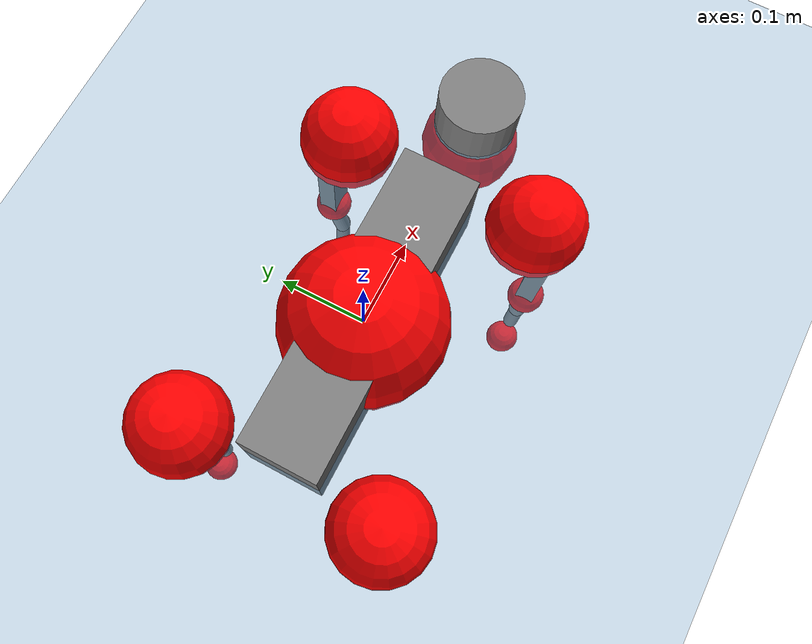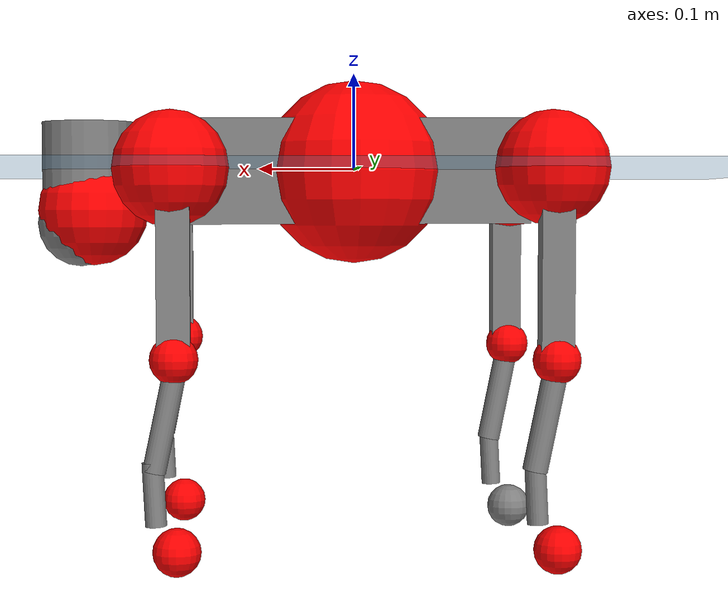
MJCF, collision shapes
<mujoco model="go2">
  <compiler angle="radian" assetdir="assets" balanceinertia="true" inertiafromgeom="false"/>

  <option timestep="0.005" density="1.2" viscosity="2e-05"/>

  <size nkey="1"/>

  <visual>
    <quality shadowsize="8192"/>
    <map shadowclip="0.5"/>
  </visual>

  <default>
    <default class="/">
      <geom contype="0" conaffinity="0" group="1" solref="-1000 -80"/>
      <site size="0.01 0.005 0.005" group="5"/>
      <general forcelimited="true" biastype="affine" gainprm="20" biasprm="0 -20 -0.5"/>
      <default class="go2">
        <joint armature="0.01" damping="0.01" frictionloss="0.2"/>
        <geom condim="1" margin="0.001"/>
        <default class="visual">
          <geom type="mesh" group="2"/>
        </default>
        <default class="collision">
          <geom group="3"/>
          <default class="foot">
            <geom size="0.022 0 0" condim="6" priority="1" friction="0.8 0.02 0.01" solimp="0.015 1 0.022"/>
          </default>
        </default>
        <default class="reward_collision_sphere">
          <geom group="5" rgba="1 0 0 1"/>
        </default>
      </default>
    </default>
  </default>

  <asset>
    <texture type="skybox" colorspace="auto" name="//unnamed_texture_0" builtin="gradient" rgb1="0.95 0.95 0.95" rgb2="0.95 0.95 0.95" width="100" height="600"/>
    <texture type="2d" colorspace="auto" name="texplane" builtin="checker" rgb1="0.345 0.575 0.748" rgb2="0.345 0.575 0.748" markrgb="1 1 1" width="512" height="512"/>
    <material name="MatPlane" class="/" texture="texplane" texuniform="true" texrepeat="2 2" specular="0.9"/>
    <material name="metal" class="/" rgba="0.9 0.95 0.95 1"/>
    <material name="black" class="/" rgba="0 0 0 1"/>
    <material name="white" class="/"/>
    <material name="gray" class="/" rgba="0.671705 0.692426 0.77427 1"/>
    <mesh name="base_0" class="/" file="base_0.obj"/>
    <mesh name="base_1" class="/" file="base_1.obj"/>
    <mesh name="base_2" class="/" file="base_2.obj"/>
    <mesh name="base_3" class="/" file="base_3.obj"/>
    <mesh name="base_4" class="/" file="base_4.obj"/>
    <mesh name="hip_0" class="/" file="hip_0.obj"/>
    <mesh name="hip_1" class="/" file="hip_1.obj"/>
    <mesh name="thigh_0" class="/" file="thigh_0.obj"/>
    <mesh name="thigh_1" class="/" file="thigh_1.obj"/>
    <mesh name="thigh_mirror_0" class="/" file="thigh_mirror_0.obj"/>
    <mesh name="thigh_mirror_1" class="/" file="thigh_mirror_1.obj"/>
    <mesh name="calf_0" class="/" file="calf_0.obj"/>
    <mesh name="calf_1" class="/" file="calf_1.obj"/>
    <mesh name="calf_mirror_0" class="/" file="calf_mirror_0.obj"/>
    <mesh name="calf_mirror_1" class="/" file="calf_mirror_1.obj"/>
    <mesh name="foot" class="/" file="foot.obj"/>
  </asset>

  <worldbody>
    <geom name="floor" class="/" size="100 100 0.125" type="plane" group="0" material="MatPlane"/>
    <light name="toplight_shadow" class="/" pos="0 0 5" dir="0.0990148 0.0990148 -0.990148" type="directional" ambient="0.04 0.04 0.04" diffuse="0.55 0.55 0.55" specular="0.12 0.12 0.12"/>
    <light name="toplight_fill" class="/" pos="0 0 5" dir="0.0990148 0.0990148 -0.990148" type="directional" castshadow="false" ambient="0.04 0.04 0.04" diffuse="0.3 0.3 0.3" specular="0.08 0.08 0.08"/>
    <body name="trunk" childclass="go2" pos="-0.000169353 -0.000331862 -0.00263738" quat="0.999999 -2.19857e-05 0.00123507 0.000310371">
      <inertial pos="0.0200492 0.00226622 -0.00479718" quat="0.00351614 0.72043 -0.00779036 0.693475" mass="6.16072" diaginertia="0.0989368 0.10932 0.0137024"/>
      <joint name="//unnamed_joint_0" type="free" armature="0" damping="0" frictionloss="0"/>
      <geom name="//unnamed_geom_1" class="visual" material="black" mesh="base_0"/>
      <geom name="//unnamed_geom_2" class="visual" material="black" mesh="base_1"/>
      <geom name="//unnamed_geom_3" class="visual" material="black" mesh="base_2"/>
      <geom name="//unnamed_geom_4" class="visual" material="white" mesh="base_3"/>
      <geom name="//unnamed_geom_5" class="visual" material="gray" mesh="base_4"/>
      <geom name="trunk_1" class="collision" size="0.180242 0.0447969 0.0546187" type="box"/>
      <geom name="trunk_2" class="collision" size="0.0479111 0.04312" pos="0.278689 0 0.00883693" type="cylinder"/>
      <geom name="trunk_3" class="collision" size="0.0450365" pos="0.286512 0 -0.0530216"/>
      <geom name="//unnamed_geom_9" class="reward_collision_sphere" size="0.0958223"/>
      <geom name="//unnamed_geom_10" class="reward_collision_sphere" size="0.0574934" pos="0.2738 0 -0.0397662"/>
      <site name="imu" pos="-0.0290862 0.00329995 0.0279006" size="0.00958223"/>
      <camera name="track" pos="0 -2.02623 0" quat="0.707107 0.707107 0 0" mode="trackcom"/>
      <camera name="ego_camera" pos="0.305092 0 0.0397662" quat="-0.5 -0.5 0.5 0.5"/>
      <body name="FL_hip" pos="0.189247 0.0476998 0.00104339" quat="1 -1.27245e-05 -8.8762e-05 0.000143155">
        <inertial pos="-0.00756209 0.00227638 -0.00251976" quat="0.486815 0.498225 0.509084 0.505586" mass="0.591414" diaginertia="0.000800906 0.000639854 0.000256579"/>
        <joint name="FL_hip_joint" pos="0 0 0" axis="0.999973 -0.00730565 0.000602693" range="-1.04531 1.05608" armature="0.00964425" damping="0" frictionloss="0.19443"/>
        <geom name="//unnamed_geom_11" class="visual" material="metal" mesh="hip_0"/>
        <geom name="//unnamed_geom_12" class="visual" material="gray" mesh="hip_1"/>
        <geom name="//unnamed_geom_13" class="collision" size="0.0440782 0.0191645" pos="0 0.0810494 0" quat="0.707107 0.707107 0 0" type="cylinder"/>
        <geom name="//unnamed_geom_14" class="reward_collision_sphere" size="0.0574934" pos="0 0.0709182 0"/>
        <body name="FL_thigh" pos="-0.00296798 0.0966228 0.0023487" quat="1 -2.89321e-05 -6.395e-05 -4.73852e-06">
          <inertial pos="-0.00441203 -0.0226532 -0.0295026" quat="0.829864 0.0802609 -0.0182372 0.551861" mass="0.971632" diaginertia="0.00510654 0.00605303 0.000448077"/>
          <joint name="FL_thigh_joint" pos="0 0 0" axis="0.00108815 0.999991 0.00409622" stiffness="0.00747946" range="-1.5776 3.49508" armature="0.00889536" damping="0.0144323" frictionloss="0.190962"/>
          <geom name="//unnamed_geom_15" class="visual" material="metal" mesh="thigh_0"/>
          <geom name="//unnamed_geom_16" class="visual" material="gray" mesh="thigh_1"/>
          <geom name="//unnamed_geom_17" class="collision" size="0.102051 0.0117382 0.0162898" pos="0 0 -0.0941133" quat="0.707107 0 0.707107 0" type="box"/>
          <body name="FL_calf" pos="-8.60445e-05 0.000240724 -0.188568" quat="1 8.84776e-05 6.76671e-05 0.000156961">
            <inertial pos="0.00357329 -0.00312444 -0.124377" quat="0.709605 0.00384991 -0.00438838 0.704576" mass="0.210315" diaginertia="0.00128281 0.00155635 2.85861e-05"/>
            <joint name="FL_calf_joint" pos="0 0 0" axis="-0.003339 0.999985 -0.00439403" stiffness="0.00291289" range="-2.77641 -0.821008" armature="0.00995074" damping="0.00748128" frictionloss="0.217117"/>
            <geom name="//unnamed_geom_18" class="visual" material="gray" mesh="calf_0"/>
            <geom name="//unnamed_geom_19" class="visual" material="black" mesh="calf_1"/>
            <geom name="FL_calf0" class="collision" size="0.0114987 0.0574934" pos="0.00782286 0 -0.0530216" quat="0.994493 0 -0.104807 0" type="cylinder"/>
            <geom name="//unnamed_geom_21" class="collision" size="0.0105404 0.0311422" pos="0.0195572 0 -0.130787" quat="0.999688 0 0.0249974 0" type="cylinder"/>
            <geom name="//unnamed_geom_22" class="visual" pos="0 0 -0.188227" quat="1 0 0 0" material="black" mesh="foot"/>
            <geom name="FL_foot" class="foot" size="0.0162724" pos="-0.00195572 0 -0.188227"/>
            <geom name="//unnamed_geom_24" class="reward_collision_sphere" size="0.0239556"/>
            <geom name="//unnamed_geom_25" class="reward_collision_sphere" size="0.0239556" pos="-0.00195572 0 -0.188227"/>
            <site name="FL_foot" class="foot" pos="-0.00195572 0 -0.188227" size="0.00958223"/>
          </body>
        </body>
      </body>
      <body name="FR_hip" pos="0.189689 -0.0470551 0.000740309" quat="0.999999 -0.00123416 -9.44566e-05 0.000735032">
        <inertial pos="-0.00431692 -0.00184332 0.000298466" quat="0.501297 0.506822 0.488212 0.50347" mass="0.623921" diaginertia="0.000793161 0.000642567 0.00026077"/>
        <joint name="FR_hip_joint" pos="0 0 0" axis="0.999993 -0.00167114 -0.00325424" range="-1.10313 1.04217" armature="0.00912304" damping="0.00293751" frictionloss="0.202224"/>
        <geom name="//unnamed_geom_26" class="visual" pos="0 1.12749e-09 4.83603e-08" quat="4.63268e-05 1 0 0" material="metal" mesh="hip_0"/>
        <geom name="//unnamed_geom_27" class="visual" pos="0 1.8278e-09 -1.19614e-07" quat="4.63268e-05 1 0 0" material="gray" mesh="hip_1"/>
        <geom name="//unnamed_geom_28" class="collision" size="0.0440782 0.0191645" pos="0 -0.0810494 0" quat="0.707107 0.707107 0 0" type="cylinder"/>
        <geom name="//unnamed_geom_29" class="reward_collision_sphere" size="0.0574934" pos="0 -0.0709182 0"/>
        <body name="FR_thigh" pos="1.07956e-05 -0.0977679 0.00187756" quat="1 -2.13675e-05 -2.39304e-05 -2.72102e-05">
          <inertial pos="-0.00293813 0.02322 -0.0279055" quat="0.548771 -0.0197296 0.0809866 0.831807" mass="1.03437" diaginertia="0.00534061 0.00606098 0.000470514"/>
          <joint name="FR_thigh_joint" pos="0 0 0" axis="-0.00509169 -0.999967 0.00629743" stiffness="0.0105518" range="-3.48896 1.5564" armature="0.00975239" damping="0.00402741" frictionloss="0.17318"/>
          <geom name="//unnamed_geom_30" class="visual" material="metal" mesh="thigh_mirror_0"/>
          <geom name="//unnamed_geom_31" class="visual" material="gray" mesh="thigh_mirror_1"/>
          <geom name="//unnamed_geom_32" class="collision" size="0.102051 0.0117382 0.0162898" pos="0 0 -0.0941133" quat="0.707107 0 0.707107 0" type="box"/>
          <body name="FR_calf" pos="-0.00312949 -0.000849698 -0.186073" quat="1 -2.88081e-05 -0.00022786 0.000317018">
            <inertial pos="0.00730962 -0.00171629 -0.123154" quat="0.707063 -0.00531641 -0.0106052 0.707051" mass="0.207089" diaginertia="0.00128189 0.00155761 2.73901e-05"/>
            <joint name="FR_calf_joint" pos="0 0 0" axis="0.00075339 -1 -0.000503263" stiffness="0.00509793" range="0.831646 2.71697" armature="0.00964497" damping="0" frictionloss="0.191497"/>
            <geom name="//unnamed_geom_33" class="visual" material="gray" mesh="calf_mirror_0"/>
            <geom name="//unnamed_geom_34" class="visual" material="black" mesh="calf_mirror_1"/>
            <geom name="FR_calf0" class="collision" size="0.0124569 0.0574934" pos="0.00977858 0 -0.0530216" quat="0.995004 0 -0.0998334 0" type="cylinder"/>
            <geom name="//unnamed_geom_36" class="collision" size="0.0105404 0.0311422" pos="0.0195572 0 -0.130787" quat="0.999688 0 0.0249974 0" type="cylinder"/>
            <geom name="//unnamed_geom_37" class="visual" pos="0 0 -0.188227" quat="1 0 0 0" material="black" mesh="foot"/>
            <geom name="FR_foot" class="foot" size="0.0210594" pos="-0.00195572 0 -0.188227"/>
            <geom name="//unnamed_geom_39" class="reward_collision_sphere" size="0.0239556"/>
            <geom name="//unnamed_geom_40" class="reward_collision_sphere" size="0.0239556" pos="-0.00195572 0 -0.188227"/>
            <site name="FR_foot" class="foot" pos="-0.00195572 0 -0.188227" size="0.00958223"/>
          </body>
        </body>
      </body>
      <body name="RL_hip" pos="-0.188567 0.0459767 0.00132235" quat="1 2.8413e-05 -4.96209e-05 -0.000129046">
        <inertial pos="0.00611231 1.96659e-05 -0.00249212" quat="0.503095 0.500173 0.496951 0.499763" mass="0.59143" diaginertia="0.000784457 0.000626623 0.000250715"/>
        <joint name="RL_hip_joint" pos="0 0 0" axis="-0.999929 -0.0118647 -0.000960096" range="-1.09652 1.09463" armature="0.0106647" damping="0.0131386" frictionloss="0.1919"/>
        <geom name="//unnamed_geom_41" class="visual" pos="-8.20324e-10 0 -1.60802e-07" quat="4.63268e-05 0 1 0" material="metal" mesh="hip_0"/>
        <geom name="//unnamed_geom_42" class="visual" pos="-1.32984e-09 0 -1.42609e-07" quat="4.63268e-05 0 1 0" material="gray" mesh="hip_1"/>
        <geom name="//unnamed_geom_43" class="collision" size="0.0440782 0.0191645" pos="0 0.0810494 0" quat="0.707107 0.707107 0 0" type="cylinder"/>
        <geom name="//unnamed_geom_44" class="reward_collision_sphere" size="0.0574934" pos="0 0.0709182 0"/>
        <body name="RL_thigh" pos="4.0262e-05 0.0943405 0.000666228" quat="1 0.000155376 -0.000776616 -0.000231447">
          <inertial pos="-0.000986266 -0.0239662 -0.0316027" quat="0.829519 0.0849987 -0.0200126 0.55161" mass="1.03929" diaginertia="0.00566804 0.0064069 0.000497291"/>
          <joint name="RL_thigh_joint" pos="0 0 0" axis="-0.00525479 0.999805 -0.0190177" stiffness="0.00558551" range="-0.545347 4.54671" armature="0.0099497" damping="0.00275382" frictionloss="0.189643"/>
          <geom name="//unnamed_geom_45" class="visual" material="metal" mesh="thigh_0"/>
          <geom name="//unnamed_geom_46" class="visual" material="gray" mesh="thigh_1"/>
          <geom name="//unnamed_geom_47" class="collision" size="0.102051 0.0117382 0.0162898" pos="0 0 -0.0941133" quat="0.707107 0 0.707107 0" type="box"/>
          <body name="RL_calf" pos="-0.00125099 -0.00107838 -0.19054" quat="1 -0.00082119 -0.000120403 -0.000238029">
            <inertial pos="0.00350778 0.00113424 -0.127458" quat="0.713023 0.00514396 0.00682944 0.701088" mass="0.2098" diaginertia="0.0013106 0.00152922 2.79556e-05"/>
            <joint name="RL_calf_joint" pos="0 0 0" axis="-0.00736661 0.999965 -0.00402031" stiffness="0.00524999" range="-2.73129 -0.888645" armature="0.0108106" damping="0" frictionloss="0.191196"/>
            <geom name="//unnamed_geom_48" class="visual" material="gray" mesh="calf_0"/>
            <geom name="//unnamed_geom_49" class="visual" material="black" mesh="calf_1"/>
            <geom name="RL_calf0" class="collision" size="0.0124569 0.0574934" pos="0.00977858 0 -0.0530216" quat="0.995004 0 -0.0998334 0" type="cylinder"/>
            <geom name="//unnamed_geom_51" class="collision" size="0.0105404 0.0311422" pos="0.0195572 0 -0.130787" quat="0.999688 0 0.0249974 0" type="cylinder"/>
            <geom name="//unnamed_geom_52" class="visual" pos="0 0 -0.188227" quat="1 0 0 0" material="black" mesh="foot"/>
            <geom name="RL_foot" class="foot" size="0.0192782" pos="-0.00195572 0 -0.188227"/>
            <geom name="//unnamed_geom_54" class="reward_collision_sphere" size="0.0239556"/>
            <geom name="//unnamed_geom_55" class="reward_collision_sphere" size="0.0239556" pos="-0.00195572 0 -0.188227"/>
            <site name="RL_foot" class="foot" pos="-0.00195572 0 -0.188227" size="0.00958223"/>
          </body>
        </body>
      </body>
      <body name="RR_hip" pos="-0.186354 -0.0479851 -0.000821054" quat="1 0.000120686 9.12962e-05 9.66059e-05">
        <inertial pos="0.00321916 -0.00273729 -0.000113198" quat="0.501369 0.504822 0.488682 0.504949" mass="0.596115" diaginertia="0.000842834 0.000658908 0.00026818"/>
        <joint name="RR_hip_joint" pos="0 0 0" axis="-0.999907 -0.00401026 -0.0130378" stiffness="0.00216181" range="-1.04339 1.04933" armature="0.00965761" damping="0.00880282" frictionloss="0.216874"/>
        <geom name="//unnamed_geom_56" class="visual" pos="8.21545e-10 1.12749e-09 -2.09163e-07" quat="2.14617e-09 4.63268e-05 4.63268e-05 -1" material="metal" mesh="hip_0"/>
        <geom name="//unnamed_geom_57" class="visual" pos="1.32682e-09 1.8278e-09 -2.29952e-08" quat="2.14617e-09 4.63268e-05 4.63268e-05 -1" material="gray" mesh="hip_1"/>
        <geom name="//unnamed_geom_58" class="collision" size="0.0440782 0.0191645" pos="0 -0.0810494 0" quat="0.707107 0.707107 0 0" type="cylinder"/>
        <geom name="//unnamed_geom_59" class="reward_collision_sphere" size="0.0574934" pos="0 -0.0709182 0"/>
        <body name="RR_thigh" pos="0.0014355 -0.0966337 -0.00203758" quat="1 0.000179108 0.000475159 -0.000133791">
          <inertial pos="-0.00190035 0.0230087 -0.0308081" quat="0.555973 -0.0186773 0.0820214 0.826933" mass="0.992316" diaginertia="0.00553985 0.00633045 0.000473365"/>
          <joint name="RR_thigh_joint" pos="0 0 0" axis="-0.00213124 -0.999973 -0.00698061" stiffness="0.000534908" range="-4.54269 0.487523" armature="0.00937866" damping="0.0123144" frictionloss="0.201803"/>
          <geom name="//unnamed_geom_60" class="visual" material="metal" mesh="thigh_mirror_0"/>
          <geom name="//unnamed_geom_61" class="visual" material="gray" mesh="thigh_mirror_1"/>
          <geom name="//unnamed_geom_62" class="collision" size="0.102051 0.0117382 0.0162898" pos="0 0 -0.0941133" quat="0.707107 0 0.707107 0" type="box"/>
          <body name="RR_calf" pos="-0.00214265 0.00159672 -0.190516" quat="0.999999 0.00118949 -0.000402984 -0.000187492">
            <inertial pos="0.00503947 0.00062653 -0.125036" quat="0.702868 -0.0164831 0.00505444 0.711112" mass="0.216777" diaginertia="0.00135565 0.00158352 2.80055e-05"/>
            <joint name="RR_calf_joint" pos="0 0 0" axis="0.000588572 -0.999878 0.0156119" range="0.883022 2.74852" armature="0.00944212" damping="0.00309541" frictionloss="0.20177"/>
            <geom name="//unnamed_geom_63" class="visual" material="gray" mesh="calf_mirror_0"/>
            <geom name="//unnamed_geom_64" class="visual" material="black" mesh="calf_mirror_1"/>
            <geom name="RR_calf0" class="collision" size="0.0124569 0.0574934" pos="0.00977858 0 -0.0530216" quat="0.995004 0 -0.0998334 0" type="cylinder"/>
            <geom name="//unnamed_geom_66" class="collision" size="0.0105404 0.0311422" pos="0.0195572 0 -0.130787" quat="0.999688 0 0.0249974 0" type="cylinder"/>
            <geom name="//unnamed_geom_67" class="visual" pos="0 0 -0.188227" quat="1 0 0 0" material="black" mesh="foot"/>
            <geom name="RR_foot" class="foot" size="0.023968" pos="-0.00195572 0 -0.188227"/>
            <geom name="//unnamed_geom_69" class="reward_collision_sphere" size="0.0239556"/>
            <geom name="//unnamed_geom_70" class="reward_collision_sphere" size="0.0239556" pos="-0.00195572 0 -0.188227"/>
            <site name="RR_foot" class="foot" pos="-0.00195572 0 -0.188227" size="0.00958223"/>
          </body>
        </body>
      </body>
    </body>
  </worldbody>

  <contact>
    <pair class="/" geom1="floor" geom2="FL_foot" name="//unnamed_contact_0"/>
    <pair class="/" geom1="floor" geom2="FR_foot" name="//unnamed_contact_1"/>
    <pair class="/" geom1="floor" geom2="RL_foot" name="//unnamed_contact_2"/>
    <pair class="/" geom1="floor" geom2="RR_foot" name="//unnamed_contact_3"/>
  </contact>

  <actuator>
    <general name="FL_hip" class="/" joint="FL_hip_joint" forcerange="-22.3933 22.3933" gainprm="18.7817" biasprm="0 -18.7817 -0.492882"/>
    <general name="FL_thigh" class="/" joint="FL_thigh_joint" forcerange="-22.2504 22.2504" gainprm="18.7817" biasprm="0 -18.7817 -0.492882"/>
    <general name="FL_calf" class="/" joint="FL_calf_joint" forcerange="-44.4253 44.4253" gainprm="18.7817" biasprm="0 -18.7817 -0.492882"/>
    <general name="FR_hip" class="/" joint="FR_hip_joint" forcerange="-23.1935 23.1935" gainprm="18.7817" biasprm="0 -18.7817 -0.492882"/>
    <general name="FR_thigh" class="/" joint="FR_thigh_joint" forcerange="-23.0627 23.0627" gainprm="18.7817" biasprm="0 -18.7817 -0.492882"/>
    <general name="FR_calf" class="/" joint="FR_calf_joint" forcerange="-43.7583 43.7583" gainprm="18.7817" biasprm="0 -18.7817 -0.492882"/>
    <general name="RL_hip" class="/" joint="RL_hip_joint" forcerange="-22.7073 22.7073" gainprm="18.7817" biasprm="0 -18.7817 -0.492882"/>
    <general name="RL_thigh" class="/" joint="RL_thigh_joint" forcerange="-20.5171 20.5171" gainprm="18.7817" biasprm="0 -18.7817 -0.492882"/>
    <general name="RL_calf" class="/" joint="RL_calf_joint" forcerange="-47.6063 47.6063" gainprm="18.7817" biasprm="0 -18.7817 -0.492882"/>
    <general name="RR_hip" class="/" joint="RR_hip_joint" forcerange="-22.5874 22.5874" gainprm="18.7817" biasprm="0 -18.7817 -0.492882"/>
    <general name="RR_thigh" class="/" joint="RR_thigh_joint" forcerange="-23.3784 23.3784" gainprm="18.7817" biasprm="0 -18.7817 -0.492882"/>
    <general name="RR_calf" class="/" joint="RR_calf_joint" forcerange="-45.1632 45.1632" gainprm="18.7817" biasprm="0 -18.7817 -0.492882"/>
  </actuator>

  <sensor>
    <gyro site="imu" name="imu_angular_velocity"/>
    <velocimeter site="imu" name="imu_linear_velocity"/>
    <framelinvel objtype="site" objname="FL_foot" name="FL_foot_global_linear_velocity"/>
    <framelinvel objtype="site" objname="FR_foot" name="FR_foot_global_linear_velocity"/>
    <framelinvel objtype="site" objname="RL_foot" name="RL_foot_global_linear_velocity"/>
    <framelinvel objtype="site" objname="RR_foot" name="RR_foot_global_linear_velocity"/>
  </sensor>

  <keyframe>
    <key name="home" qpos="0 0 0.325 1 0 0 0 0.1 0.8 -1.5 -0.1 -0.8 1.5 -0.1 0.8 -1.5 0.1 -0.8 1.5"/>
  </keyframe>
</mujoco>
